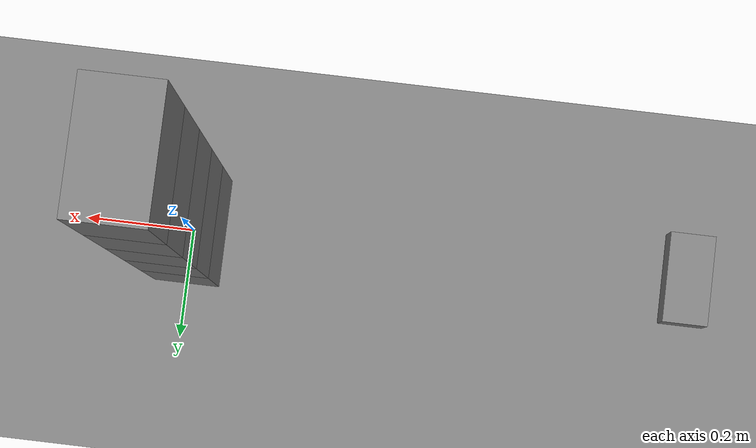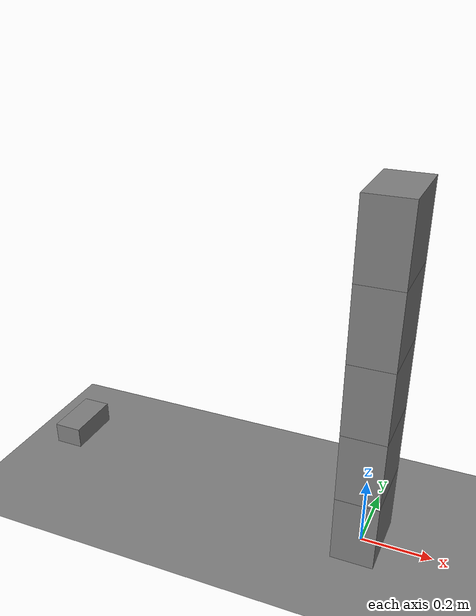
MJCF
<mujoco model="stack_topple">
  <option timestep="0.002"/>
  <worldbody>
    <geom name="floor" type="plane" size="6 6 0.1" friction="1.0 0.005 0.0001"/>
    <body name="block1" pos="0 0 0.100">
      <freejoint/>
      <geom name="block1" type="box" size="0.06 0.1 0.1" mass="0.5" friction="1.0 0.005 0.0001"/>
    </body>
    <body name="block2" pos="0 0 0.300">
      <freejoint/>
      <geom name="block2" type="box" size="0.06 0.1 0.1" mass="0.5" friction="1.0 0.005 0.0001"/>
    </body>
    <body name="block3" pos="0 0 0.500">
      <freejoint/>
      <geom name="block3" type="box" size="0.06 0.1 0.1" mass="0.5" friction="1.0 0.005 0.0001"/>
    </body>
    <body name="block4" pos="0 0 0.700">
      <freejoint/>
      <geom name="block4" type="box" size="0.06 0.1 0.1" mass="0.5" friction="1.0 0.005 0.0001"/>
    </body>
    <body name="block5" pos="0 0 0.900">
      <freejoint/>
      <geom name="block5" type="box" size="0.06 0.1 0.1" mass="0.5" friction="1.0 0.005 0.0001"/>
    </body>
    <body name="pusher" pos="-0.9 0 0.155">
      <joint name="pusher_slide" type="slide" axis="1 0 0" limited="true" range="0 1.25"/>
      <geom name="pusher" type="box" size="0.04 0.08 0.03" mass="5.0" friction="0.3 0.005 0.0001"/>
    </body>
  </worldbody>
  <actuator>
    <velocity name="pusher_drive" joint="pusher_slide" kv="100" ctrllimited="true" ctrlrange="0 0.8" forcelimited="true" forcerange="-80 80"/>
  </actuator>
  <keyframe>
    <key name="start" qpos="0 0 0.100 1 0 0 0  0 0 0.300 1 0 0 0  0 0 0.500 1 0 0 0  0 0 0.700 1 0 0 0  0 0 0.900 1 0 0 0  0" qvel="0 0 0 0 0 0  0 0 0 0 0 0  0 0 0 0 0 0  0 0 0 0 0 0  0 0 0 0 0 0  0.8" ctrl="0.8"/>
  </keyframe>
</mujoco>
